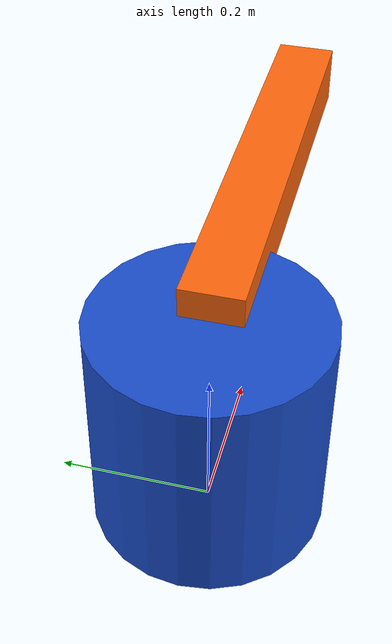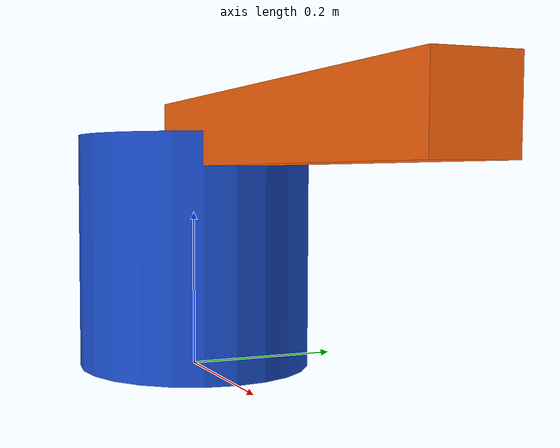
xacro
<?xml version="1.0"?>
<robot name="one_joint_robot" xmlns:xacro="http://www.ros.org/wiki/xacro">

  <!-- Fixed base -->
  <link name="base_link">
    <visual>
      <origin xyz="0 0 0.15"/>
      <geometry>
        <cylinder radius="0.15" length="0.30"/>
      </geometry>
      <material name="blue">
        <color rgba="0.1 0.3 0.8 1"/>
      </material>
    </visual>
    <collision>
      <origin xyz="0 0 0.15"/>
      <geometry>
        <cylinder radius="0.15" length="0.30"/>
      </geometry>
    </collision>
    <inertial>
      <origin xyz="0 0 0.15"/>
      <mass value="2.0"/>
      <inertia ixx="0.015" ixy="0" ixz="0"
               iyy="0.015" iyz="0" izz="0.01"/>
    </inertial>
  </link>

  <!-- Rotating arm -->
  <link name="arm_link">
    <visual>
      <origin xyz="0.30 0 0"/>
      <geometry>
        <box size="0.60 0.08 0.08"/>
      </geometry>
      <material name="orange">
        <color rgba="1 0.4 0.05 1"/>
      </material>
    </visual>
    <collision>
      <origin xyz="0.30 0 0"/>
      <geometry>
        <box size="0.60 0.08 0.08"/>
      </geometry>
    </collision>
    <inertial>
      <origin xyz="0.30 0 0"/>
      <mass value="1.0"/>
      <inertia ixx="0.002" ixy="0" ixz="0"
               iyy="0.031" iyz="0" izz="0.031"/>
    </inertial>
  </link>

  <!-- One revolute joint: rotates around the vertical Z axis -->
  <joint name="joint1" type="revolute">
    <parent link="base_link"/>
    <child link="arm_link"/>
    <origin xyz="0 0 0.30" rpy="0 0 0"/>
    <axis xyz="0 0 1"/>
    <limit lower="-1.57" upper="1.57" effort="20" velocity="1.0"/>
    <dynamics damping="0.2" friction="0.1"/>
  </joint>

  <!-- Expose joint1 to ros2_control -->
  <ros2_control name="GazeboSimSystem" type="system">
    <hardware>
      <plugin>gz_ros2_control/GazeboSimSystem</plugin>
    </hardware>
    <joint name="joint1">
      <command_interface name="position"/>
      <state_interface name="position"/>
      <state_interface name="velocity"/>
    </joint>
  </ros2_control>

  <!-- Connect Gazebo to ros2_control -->
  <gazebo>
    <plugin filename="gz_ros2_control-system"
            name="gz_ros2_control::GazeboSimROS2ControlPlugin">
      <parameters>$(find one_joint_robot_description)/config/controllers.yaml</parameters>
    </plugin>
  </gazebo>

</robot>
